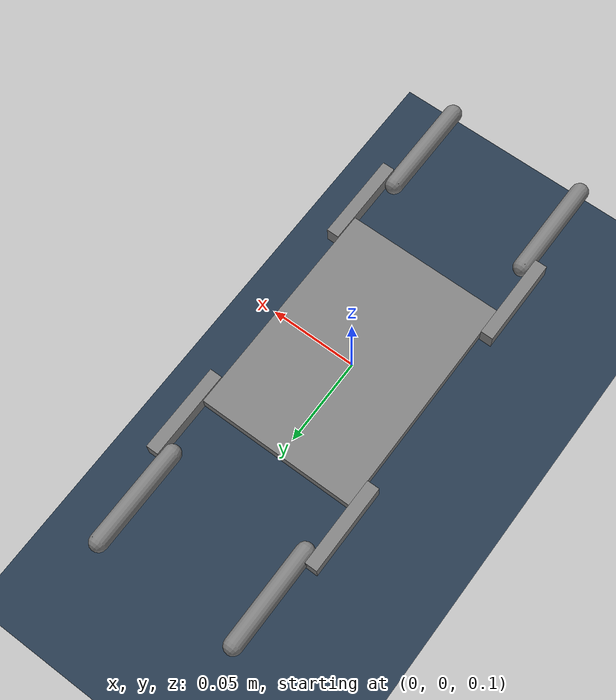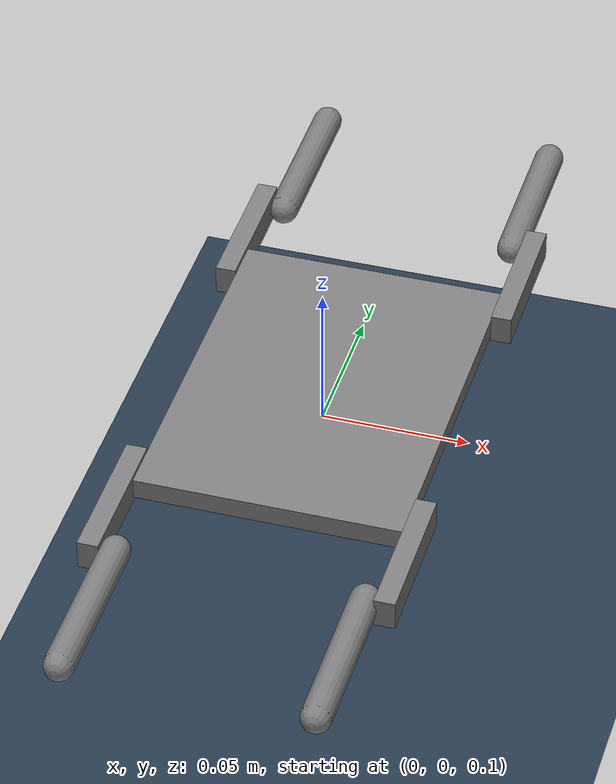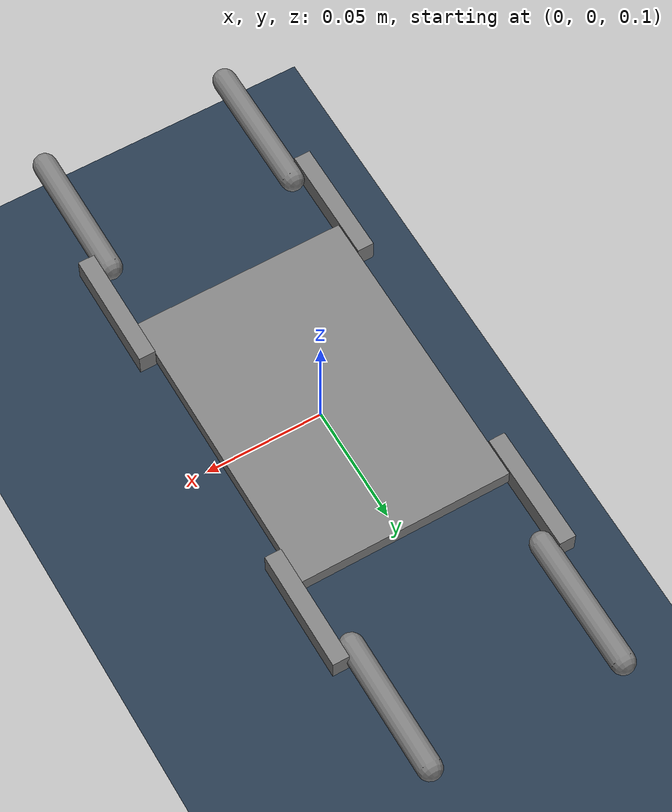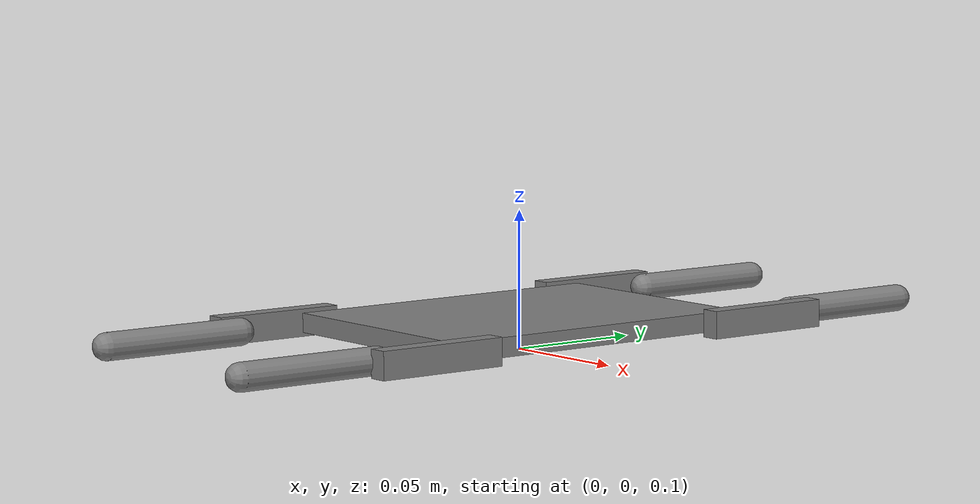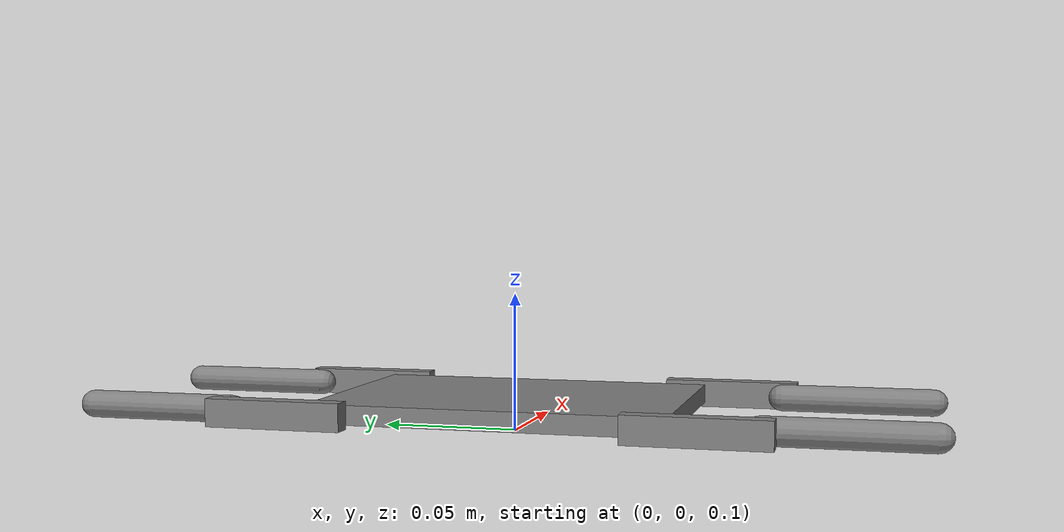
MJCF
<mujoco model="bittle_simple">

    <compiler balanceinertia="true" angle="radian"/>

    <option timestep="0.001" iterations="50" tolerance="1e-10" solver="Newton" integrator="Euler" jacobian="auto" cone="pyramidal"  />

    <visual>
        <map force="0.1" zfar="30"/>
        <rgba haze="0.15 0.25 0.35 1"/>
        <quality shadowsize="2048"/>
        <global offwidth="800" offheight="800"/>
    </visual>

    <asset>
        <texture type="skybox" builtin="gradient" rgb1="0.3 0.5 0.7" rgb2="0 0 0" width="512" height="512"/>
        <texture name="texplane" type="2d" builtin="checker" rgb1=".2 .3 .4" rgb2=".1 0.15 0.2" width="512" height="512" mark="cross" markrgb=".8 .8 .8"/>
        <texture name="texgeom" type="cube" builtin="flat" mark="cross" width="127" height="1278"
            rgb1="0.8 0.6 0.4" rgb2="0.8 0.6 0.4" markrgb="1 1 1" random="0.01"/>
        <material name="matplane" reflectance="0.3" texture="texplane" texrepeat="1 1" texuniform="true"/>
        <material name="matgeom" texture="texgeom" texuniform="true" rgba="0.8 0.6 .4 1"/>
    </asset>

    <worldbody>
        <geom name="floor" pos="0 0 0" size="0 0 .5" type="plane" material="matplane" condim="4" friction="1 0.01 0.001"/>

        <body name="torso" pos="0 0 0.11">
            <inertial mass = "20" diaginertia="0.026963333333333335 0.013581666666666667 0.04038166666666667" pos="0 0 0"/>

            <freejoint name="root"/>
            <geom conaffinity="1" contype="1" name="torso"  type="box" size="0.045 0.0635 0.0035" pos="0 0 0"/>

            <body name="lfs" pos="-0.0485 0.0735 0" >
                <inertial mass = "0.6" diaginertia="1.3000000000000003e-04 7.450000000000001e-06 1.2745000000000002e-04" pos="0 0 0" />
                <geom name="lfs" conaffinity="0" contype="0" type="box" size="0.0035 0.025 0.005" />
                <joint name="lfsj" type="hinge" pos="0 -0.023 0" axis="1 0 0" range="-6.28 6.28" damping="0.5"/>

                <body name="lfk" pos="0.0075 0.04725 0" >
                    <inertial mass = "1.7" diaginertia="5.241666666666667e-04 2.8333333333333336e-05 5.241666666666667e-04" pos="0 0 0"/>
                    <geom name="lfk" type="capsule" size="0.005 0.0275 " zaxis = "0 1 0" condim="4" friction="1 0.01 0.001"/>
                    <joint name="lfkj" type="hinge" pos="0 -0.02425 0" axis="1 0 0" range="-6.28 6.28" damping="0.5"/>
                </body>
            </body>

            <body name="rfs" pos="0.0485 0.0735 0" >
                <inertial mass = "0.6" diaginertia="1.3000000000000003e-04 7.450000000000001e-06 1.2745000000000002e-04" pos="0 0 0" />
                <geom name="rfs" conaffinity="0" contype="0" type="box" size="0.0035 0.025 0.005" />
                <joint name="rfsj" type="hinge" pos="0 -0.023 0" axis="1 0 0" range="-6.28 6.28" damping="0.5"/>

                <body name="rfk" pos="-0.0075 0.04725 0" >
                    <inertial mass = "1.7" diaginertia="5.241666666666667e-04 2.8333333333333336e-05 5.241666666666667e-04" pos="0 0 0"/>
                    <geom name="rfk" type="capsule" size="0.005 0.0275 " zaxis = "0 1 0" condim="4" friction="1 0.01 0.001"/>
                    <joint name="rfkj" type="hinge" pos="0 -0.02425 0" axis="1 0 0" range="-6.28 6.28" damping="0.5"/>
                </body>
            </body>

            <body name="lbs" pos="-0.0485 -0.0735 0" >
                <inertial mass = "0.6" diaginertia="1.3000000000000003e-04 7.450000000000001e-06 1.2745000000000002e-04" pos="0 0 0" />
                <geom name="lbs" conaffinity="0" contype="0" type="box" size="0.0035 0.025 0.005" />
                <joint name="lbsj" type="hinge" pos="0 0.023 0" axis="1 0 0" range="-6.28 6.28" damping="0.5"/>

                <body name="lbk" pos="0.0075 -0.04725 0" >
                    <inertial mass = "1.7" diaginertia="5.241666666666667e-04 2.8333333333333336e-05 5.241666666666667e-04" pos="0 0 0"/>
                    <geom name="lbk" type="capsule" size="0.005 0.0275 " zaxis = "0 1 0" condim="4" friction="1 0.01 0.001"/>
                    <joint name="lbkj" type="hinge" pos="0 0.02425 0" axis="1 0 0" range="-6.28 6.28" damping="0.5"/>
                </body>
            </body>

             <body name="rbs" pos="0.0485 -0.0735 0" >
                <inertial mass = "0.6" diaginertia="1.3000000000000003e-04 7.450000000000001e-06 1.2745000000000002e-04" pos="0 0 0" />
                <geom name="rbs" conaffinity="0" contype="0" type="box" size="0.0035 0.025 0.005" />
                <joint name="rbsj" type="hinge" pos="0 0.023 0" axis="1 0 0" range="-6.28 6.28" damping="0.5"/>

                <body name="rbk" pos="-0.0075 -0.04725 0" >
                    <inertial mass = "1.7" diaginertia="5.241666666666667e-04 2.8333333333333336e-05 5.241666666666667e-04" pos="0 0 0"/>
                    <geom name="rbk" type="capsule" size="0.005 0.0275 " zaxis = "0 1 0" condim="4" friction="1 0.01 0.001"/>
                    <joint name="rbkj" type="hinge" pos="0 0.02425 0" axis="1 0 0" range="-6.28 6.28" damping="0.5"/>
                </body>
            </body>

        </body>
    </worldbody>

</mujoco>
